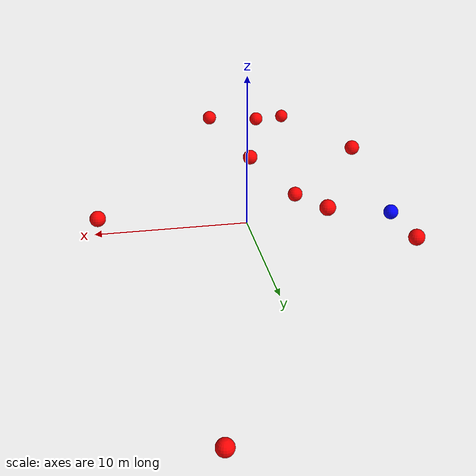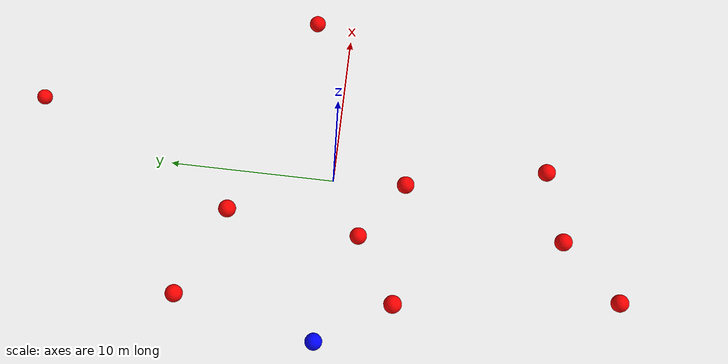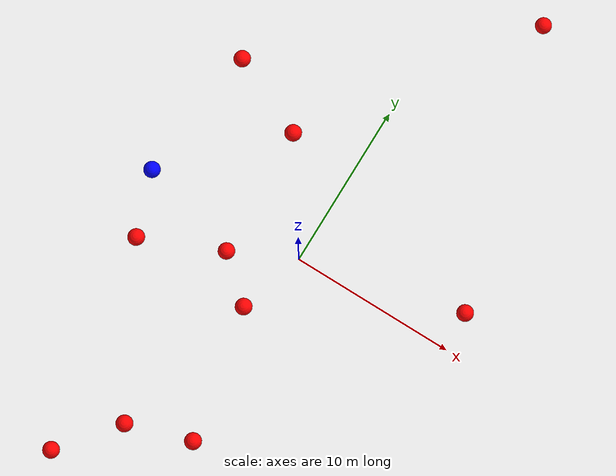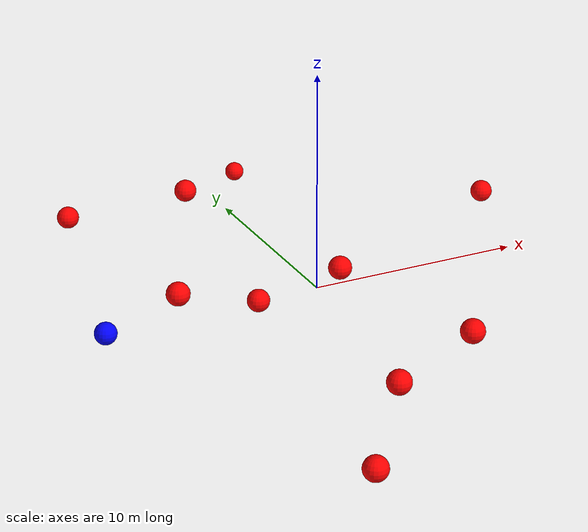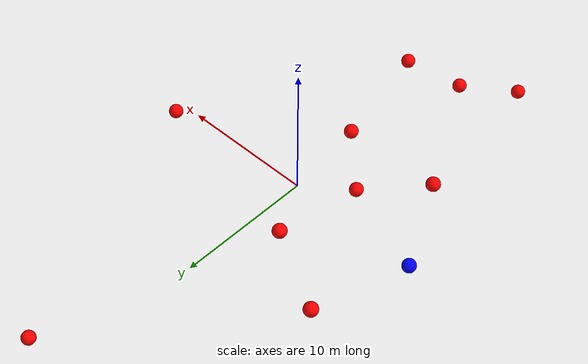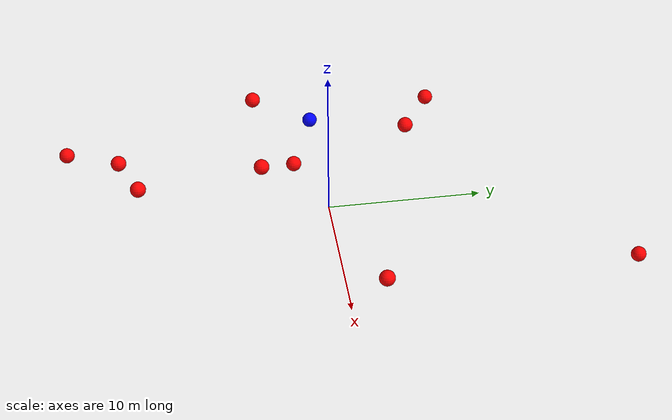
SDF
<?xml version="1.0" ?>
<sdf version="1.8">
    <world name="3d_world">
        <physics name="1ms" type="ode">
            <max_step_size>0.001</max_step_size>
            <real_time_factor>1.0</real_time_factor>
            <real_time_update_rate>1000.0</real_time_update_rate>
        </physics>
        <gravity>0 0 0</gravity>

        <plugin
            filename="gz-sim-physics-system"
            name="gz::sim::v8::systems::Physics">
        </plugin>
        <plugin
            filename="libignition-gazebo-user-commands-system.so"
            name="ignition::gazebo::systems::UserCommands">
        </plugin>
        <plugin
            filename="gz-sim-scene-broadcaster-system"
            name="gz::sim::systems::SceneBroadcaster">
        </plugin>
        <plugin
            filename="gz-sim-sensors-system"
            name="gz::sim::systems::Sensors">
            <render_engine>ogre2</render_engine>
        </plugin>

        <light type="directional" name="sun">
            <cast_shadows>true</cast_shadows>
            <pose>0 0 10 0 0 0</pose>
            <diffuse>0.8 0.8 0.8 1</diffuse>
            <specular>0.2 0.2 0.2 1</specular>
            <attenuation>
                <range>1000</range>
                <constant>0.9</constant>
                <linear>0.01</linear>
                <quadratic>0.001</quadratic>
            </attenuation>
            <direction>-0.5 0.1 -0.9</direction>
        </light>

        <!-- AGENTE -->
        <model name='agente' canonical_link='chassis'>
            <pose relative_to='world'>-10.0 0 0.0 0 0 0</pose>
            <link name='chassis'>
                <pose relative_to='__model__'>0.0 0 0.0 0 0 0</pose>
                <inertial>
                    <mass>1.14395</mass>
                    <inertia>
                        <ixx>0.095329</ixx>
                        <ixy>0</ixy>
                        <ixz>0</ixz>
                        <iyy>0.381317</iyy>
                        <iyz>0</iyz>
                        <izz>0.476646</izz>
                    </inertia>
                </inertial>
                <visual name='visual'>
                    <geometry>
                        <sphere>
                            <radius>0.5</radius>
                        </sphere>
                    </geometry>
                    <material>
                        <ambient>0.0 0.0 1.0 1</ambient>
                        <diffuse>0.0 0.0 1.0 1</diffuse>
                        <specular>0.0 0.0 1.0 1</specular>
                    </material>
                </visual>
                <collision name='collision'>
                    <geometry>
                        <sphere>
                            <radius>0.5</radius>
                        </sphere>
                    </geometry>
                </collision>
                <enable_gravity>false</enable_gravity>
            </link>

            <link name='lidar_link'>
                <pose relative_to='chassis'>0.0 0 0.1 0 0 0</pose>
                <inertial>
                    <mass>0.1</mass>
                    <inertia>
                        <ixx>0.000166667</ixx>
                        <iyy>0.000166667</iyy>
                        <izz>0.000166667</izz>
                    </inertia>
                </inertial>
                <collision name='collision'>
                    <geometry>
                        <cylinder>
                            <radius>0.05</radius>
                            <length>0.1</length>
                        </cylinder>
                    </geometry>
                </collision>
                <visual name='visual'>
                    <geometry>
                        <cylinder>
                            <radius>0.05</radius>
                            <length>0.1</length>
                        </cylinder>
                    </geometry>
                    <material>
                        <ambient>0.0 1.0 0.0 1</ambient>
                        <diffuse>0.0 1.0 0.0 1</diffuse>
                        <specular>0.0 1.0 0.0 1</specular>
                    </material>
                </visual>
                <sensor name="lidar" type="gpu_lidar">
                    <topic>scan</topic>
                    <update_rate>10</update_rate>
                    <lidar>
                        <scan>
                            <horizontal>
                                <samples>5000</samples>
                                <resolution>1</resolution>
                                <min_angle>-3.14159</min_angle>
                                <max_angle>3.14159</max_angle>
                            </horizontal>
                        </scan>
                        <range>
                            <min>0.1</min>
                            <max>10.0</max>
                            <resolution>0.01</resolution>
                        </range>
                    </lidar>
                    <visualize>true</visualize>
                    <always_on>true</always_on>
                    <update_rate>10</update_rate>
                    <pose_frame>lidar</pose_frame>
                </sensor>
                <enable_gravity>false</enable_gravity>
            </link>

            <joint name="lidar_joint" type="fixed">
                <parent>chassis</parent>
                <child>lidar_link</child>
            </joint>

            <plugin
                filename="ignition-gazebo-joint-state-publisher-system"
                name="ignition::gazebo::systems::JointStatePublisher">
            </plugin>
            <plugin
                filename="ignition-gazebo-odometry-publisher-system"
                name="ignition::gazebo::systems::OdometryPublisher">
                <dimensions>3</dimensions>
            </plugin>
            <plugin
                filename="ignition-gazebo-velocity-control-system"
                name="ignition::gazebo::systems::VelocityControl">
                <initial_linear>0.0 0 0</initial_linear>
                <initial_angular>0 0 0.0</initial_angular>
            </plugin>
            <plugin
                filename="libignition-gazebo-pose-publisher-system.so"
                name="ignition::gazebo::systems::PosePublisher">
                <topic>/agente/pose</topic>
                <frame_id>agente</frame_id>
                <update_rate>30</update_rate>
            </plugin>
        </model>

        <!-- OBSTACLE 1 -->
        <model name='obstacle_1' canonical_link='obstacle'>
            <static>false</static>
            <pose relative_to='world'>4.83 19.77 -2.45 0 0 0</pose>
            <link name='obstacle'>
                <pose relative_to='__model__'>0.0 0 0.0 0 0 0</pose>
                <visual name='visual'>
                    <geometry>
                        <sphere>
                            <radius>0.50</radius>
                        </sphere>
                    </geometry>
                    <material>
                        <ambient>1.0 0.0 0.0 1</ambient>
                        <diffuse>1.0 0.0 0.0 1</diffuse>
                        <specular>1.0 0.0 0.0 1</specular>
                    </material>
                </visual>
                <collision name='collision'>
                    <geometry>
                        <sphere>
                            <radius>0.50</radius>
                        </sphere>
                    </geometry>
                </collision>
                <enable_gravity>false</enable_gravity>
            </link>

            <plugin
                filename="ignition-gazebo-velocity-control-system"
                name="ignition::gazebo::systems::VelocityControl">
                <initial_linear>-0.37 -1.95 0.24</initial_linear>
                <initial_angular>0 0 0</initial_angular>
            </plugin>

            <plugin
                filename="ignition-gazebo-odometry-publisher-system"
                name="ignition::gazebo::systems::OdometryPublisher">
                <dimensions>3</dimensions>
            </plugin>
        </model>

        <!-- OBSTACLE 2 -->
        <model name='obstacle_2' canonical_link='obstacle'>
            <static>false</static>
            <pose relative_to='world'>-8.28 -4.08 3.28 0 0 0</pose>
            <link name='obstacle'>
                <pose relative_to='__model__'>0.0 0 0.0 0 0 0</pose>
                <visual name='visual'>
                    <geometry>
                        <sphere>
                            <radius>0.50</radius>
                        </sphere>
                    </geometry>
                    <material>
                        <ambient>1.0 0.0 0.0 1</ambient>
                        <diffuse>1.0 0.0 0.0 1</diffuse>
                        <specular>1.0 0.0 0.0 1</specular>
                    </material>
                </visual>
                <collision name='collision'>
                    <geometry>
                        <sphere>
                            <radius>0.50</radius>
                        </sphere>
                    </geometry>
                </collision>
                <enable_gravity>false</enable_gravity>
            </link>

            <plugin
                filename="ignition-gazebo-velocity-control-system"
                name="ignition::gazebo::systems::VelocityControl">
                <initial_linear>1.79 0.69 -0.55</initial_linear>
                <initial_angular>0 0 0</initial_angular>
            </plugin>

            <plugin
                filename="ignition-gazebo-odometry-publisher-system"
                name="ignition::gazebo::systems::OdometryPublisher">
                <dimensions>3</dimensions>
            </plugin>
        </model>

        <!-- OBSTACLE 3 -->
        <model name='obstacle_3' canonical_link='obstacle'>
            <static>false</static>
            <pose relative_to='world'>-3.87 5.67 3.29 0 0 0</pose>
            <link name='obstacle'>
                <pose relative_to='__model__'>0.0 0 0.0 0 0 0</pose>
                <visual name='visual'>
                    <geometry>
                        <sphere>
                            <radius>0.50</radius>
                        </sphere>
                    </geometry>
                    <material>
                        <ambient>1.0 0.0 0.0 1</ambient>
                        <diffuse>1.0 0.0 0.0 1</diffuse>
                        <specular>1.0 0.0 0.0 1</specular>
                    </material>
                </visual>
                <collision name='collision'>
                    <geometry>
                        <sphere>
                            <radius>0.50</radius>
                        </sphere>
                    </geometry>
                </collision>
                <enable_gravity>false</enable_gravity>
            </link>

            <plugin
                filename="ignition-gazebo-velocity-control-system"
                name="ignition::gazebo::systems::VelocityControl">
                <initial_linear>1.28 -1.13 -0.66</initial_linear>
                <initial_angular>0 0 0</initial_angular>
            </plugin>

            <plugin
                filename="ignition-gazebo-odometry-publisher-system"
                name="ignition::gazebo::systems::OdometryPublisher">
                <dimensions>3</dimensions>
            </plugin>
        </model>

        <!-- OBSTACLE 4 -->
        <model name='obstacle_4' canonical_link='obstacle'>
            <static>false</static>
            <pose relative_to='world'>9.79 2.16 2.08 0 0 0</pose>
            <link name='obstacle'>
                <pose relative_to='__model__'>0.0 0 0.0 0 0 0</pose>
                <visual name='visual'>
                    <geometry>
                        <sphere>
                            <radius>0.50</radius>
                        </sphere>
                    </geometry>
                    <material>
                        <ambient>1.0 0.0 0.0 1</ambient>
                        <diffuse>1.0 0.0 0.0 1</diffuse>
                        <specular>1.0 0.0 0.0 1</specular>
                    </material>
                </visual>
                <collision name='collision'>
                    <geometry>
                        <sphere>
                            <radius>0.50</radius>
                        </sphere>
                    </geometry>
                </collision>
                <enable_gravity>false</enable_gravity>
            </link>

            <plugin
                filename="ignition-gazebo-velocity-control-system"
                name="ignition::gazebo::systems::VelocityControl">
                <initial_linear>-1.12 -0.39 -0.38</initial_linear>
                <initial_angular>0 0 0</initial_angular>
            </plugin>

            <plugin
                filename="ignition-gazebo-odometry-publisher-system"
                name="ignition::gazebo::systems::OdometryPublisher">
                <dimensions>3</dimensions>
            </plugin>
        </model>

        <!-- OBSTACLE 5 -->
        <model name='obstacle_5' canonical_link='obstacle'>
            <static>false</static>
            <pose relative_to='world'>-8.76 7.99 1.99 0 0 0</pose>
            <link name='obstacle'>
                <pose relative_to='__model__'>0.0 0 0.0 0 0 0</pose>
                <visual name='visual'>
                    <geometry>
                        <sphere>
                            <radius>0.50</radius>
                        </sphere>
                    </geometry>
                    <material>
                        <ambient>1.0 0.0 0.0 1</ambient>
                        <diffuse>1.0 0.0 0.0 1</diffuse>
                        <specular>1.0 0.0 0.0 1</specular>
                    </material>
                </visual>
                <collision name='collision'>
                    <geometry>
                        <sphere>
                            <radius>0.50</radius>
                        </sphere>
                    </geometry>
                </collision>
                <enable_gravity>false</enable_gravity>
            </link>

            <plugin
                filename="ignition-gazebo-velocity-control-system"
                name="ignition::gazebo::systems::VelocityControl">
                <initial_linear>1.08 -1.63 -0.41</initial_linear>
                <initial_angular>0 0 0</initial_angular>
            </plugin>

            <plugin
                filename="ignition-gazebo-odometry-publisher-system"
                name="ignition::gazebo::systems::OdometryPublisher">
                <dimensions>3</dimensions>
            </plugin>
        </model>

        <!-- OBSTACLE 6 -->
        <model name='obstacle_6' canonical_link='obstacle'>
            <static>false</static>
            <pose relative_to='world'>0.58 -12.17 3.33 0 0 0</pose>
            <link name='obstacle'>
                <pose relative_to='__model__'>0.0 0 0.0 0 0 0</pose>
                <visual name='visual'>
                    <geometry>
                        <sphere>
                            <radius>0.50</radius>
                        </sphere>
                    </geometry>
                    <material>
                        <ambient>1.0 0.0 0.0 1</ambient>
                        <diffuse>1.0 0.0 0.0 1</diffuse>
                        <specular>1.0 0.0 0.0 1</specular>
                    </material>
                </visual>
                <collision name='collision'>
                    <geometry>
                        <sphere>
                            <radius>0.50</radius>
                        </sphere>
                    </geometry>
                </collision>
                <enable_gravity>false</enable_gravity>
            </link>

            <plugin
                filename="ignition-gazebo-velocity-control-system"
                name="ignition::gazebo::systems::VelocityControl">
                <initial_linear>-0.67 1.82 -0.50</initial_linear>
                <initial_angular>0 0 0</initial_angular>
            </plugin>

            <plugin
                filename="ignition-gazebo-odometry-publisher-system"
                name="ignition::gazebo::systems::OdometryPublisher">
                <dimensions>3</dimensions>
            </plugin>
        </model>

        <!-- OBSTACLE 7 -->
        <model name='obstacle_7' canonical_link='obstacle'>
            <static>false</static>
            <pose relative_to='world'>-6.11 -16.77 1.56 0 0 0</pose>
            <link name='obstacle'>
                <pose relative_to='__model__'>0.0 0 0.0 0 0 0</pose>
                <visual name='visual'>
                    <geometry>
                        <sphere>
                            <radius>0.50</radius>
                        </sphere>
                    </geometry>
                    <material>
                        <ambient>1.0 0.0 0.0 1</ambient>
                        <diffuse>1.0 0.0 0.0 1</diffuse>
                        <specular>1.0 0.0 0.0 1</specular>
                    </material>
                </visual>
                <collision name='collision'>
                    <geometry>
                        <sphere>
                            <radius>0.50</radius>
                        </sphere>
                    </geometry>
                </collision>
                <enable_gravity>false</enable_gravity>
            </link>

            <plugin
                filename="ignition-gazebo-velocity-control-system"
                name="ignition::gazebo::systems::VelocityControl">
                <initial_linear>1.17 1.61 -0.15</initial_linear>
                <initial_angular>0 0 0</initial_angular>
            </plugin>

            <plugin
                filename="ignition-gazebo-odometry-publisher-system"
                name="ignition::gazebo::systems::OdometryPublisher">
                <dimensions>3</dimensions>
            </plugin>
        </model>

        <!-- OBSTACLE 8 -->
        <model name='obstacle_8' canonical_link='obstacle'>
            <static>false</static>
            <pose relative_to='world'>-1.04 -4.22 3.00 0 0 0</pose>
            <link name='obstacle'>
                <pose relative_to='__model__'>0.0 0 0.0 0 0 0</pose>
                <visual name='visual'>
                    <geometry>
                        <sphere>
                            <radius>0.50</radius>
                        </sphere>
                    </geometry>
                    <material>
                        <ambient>1.0 0.0 0.0 1</ambient>
                        <diffuse>1.0 0.0 0.0 1</diffuse>
                        <specular>1.0 0.0 0.0 1</specular>
                    </material>
                </visual>
                <collision name='collision'>
                    <geometry>
                        <sphere>
                            <radius>0.50</radius>
                        </sphere>
                    </geometry>
                </collision>
                <enable_gravity>false</enable_gravity>
            </link>

            <plugin
                filename="ignition-gazebo-velocity-control-system"
                name="ignition::gazebo::systems::VelocityControl">
                <initial_linear>1.11 0.66 -0.47</initial_linear>
                <initial_angular>0 0 0</initial_angular>
            </plugin>

            <plugin
                filename="ignition-gazebo-odometry-publisher-system"
                name="ignition::gazebo::systems::OdometryPublisher">
                <dimensions>3</dimensions>
            </plugin>
        </model>

        <!-- OBSTACLE 9 -->
        <model name='obstacle_9' canonical_link='obstacle'>
            <static>false</static>
            <pose relative_to='world'>-3.72 -1.86 1.01 0 0 0</pose>
            <link name='obstacle'>
                <pose relative_to='__model__'>0.0 0 0.0 0 0 0</pose>
                <visual name='visual'>
                    <geometry>
                        <sphere>
                            <radius>0.50</radius>
                        </sphere>
                    </geometry>
                    <material>
                        <ambient>1.0 0.0 0.0 1</ambient>
                        <diffuse>1.0 0.0 0.0 1</diffuse>
                        <specular>1.0 0.0 0.0 1</specular>
                    </material>
                </visual>
                <collision name='collision'>
                    <geometry>
                        <sphere>
                            <radius>0.50</radius>
                        </sphere>
                    </geometry>
                </collision>
                <enable_gravity>false</enable_gravity>
            </link>

            <plugin
                filename="ignition-gazebo-velocity-control-system"
                name="ignition::gazebo::systems::VelocityControl">
                <initial_linear>1.46 0.31 -0.17</initial_linear>
                <initial_angular>0 0 0</initial_angular>
            </plugin>

            <plugin
                filename="ignition-gazebo-odometry-publisher-system"
                name="ignition::gazebo::systems::OdometryPublisher">
                <dimensions>3</dimensions>
            </plugin>
        </model>

        <!-- OBSTACLE 10 -->
        <model name='obstacle_10' canonical_link='obstacle'>
            <static>false</static>
            <pose relative_to='world'>-3.28 -13.34 2.62 0 0 0</pose>
            <link name='obstacle'>
                <pose relative_to='__model__'>0.0 0 0.0 0 0 0</pose>
                <visual name='visual'>
                    <geometry>
                        <sphere>
                            <radius>0.50</radius>
                        </sphere>
                    </geometry>
                    <material>
                        <ambient>1.0 0.0 0.0 1</ambient>
                        <diffuse>1.0 0.0 0.0 1</diffuse>
                        <specular>1.0 0.0 0.0 1</specular>
                    </material>
                </visual>
                <collision name='collision'>
                    <geometry>
                        <sphere>
                            <radius>0.50</radius>
                        </sphere>
                    </geometry>
                </collision>
                <enable_gravity>false</enable_gravity>
            </link>

            <plugin
                filename="ignition-gazebo-velocity-control-system"
                name="ignition::gazebo::systems::VelocityControl">
                <initial_linear>0.45 1.91 -0.38</initial_linear>
                <initial_angular>0 0 0</initial_angular>
            </plugin>

            <plugin
                filename="ignition-gazebo-odometry-publisher-system"
                name="ignition::gazebo::systems::OdometryPublisher">
                <dimensions>3</dimensions>
            </plugin>
        </model>

    </world>
</sdf>
